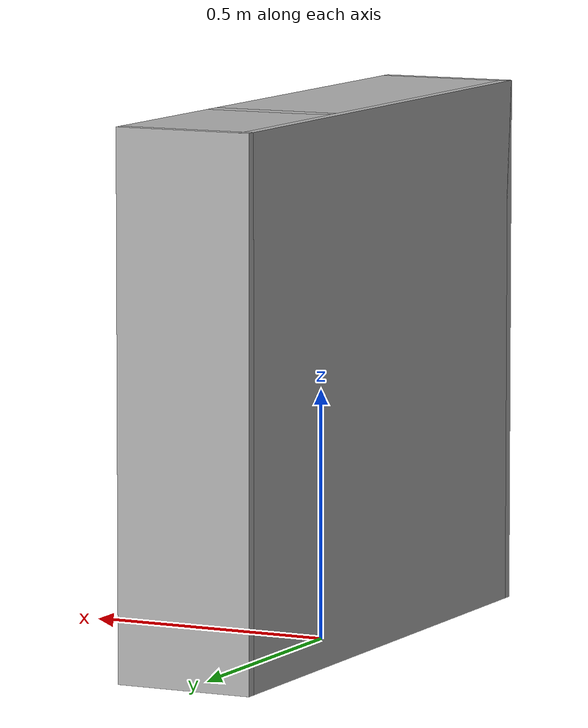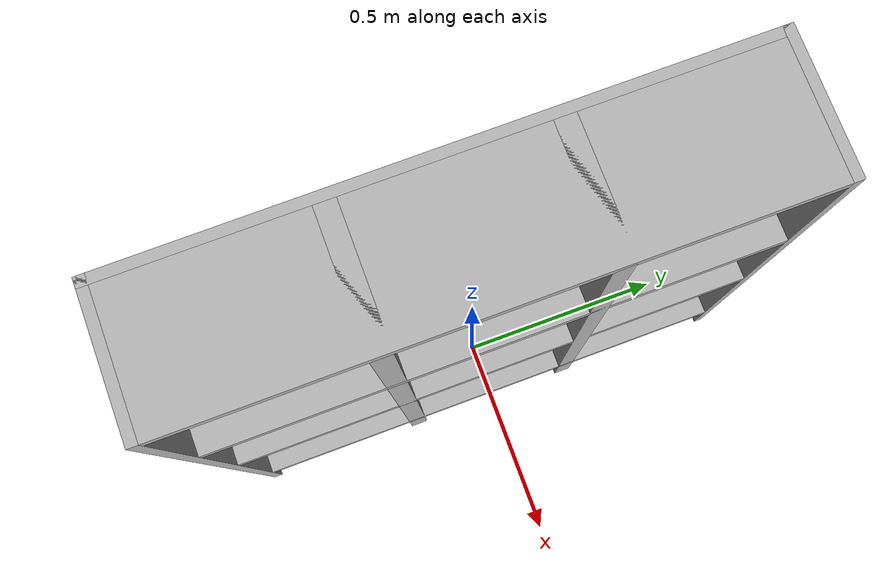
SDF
<?xml version="1.0" ?>
<sdf version="1.6">
  <model name="rwc2022/shelves120x28x107">
    <static>true</static>
    <link name="1_link">
      <collision name="1_col">
        <geometry>
          <box>
            <size>0.28 0.02 1.07</size>
          </box>
        </geometry>
      </collision>
      <visual name="1_vis">
        <geometry>
          <box>
            <size>0.28 0.02 1.07</size>
          </box>
        </geometry>
      </visual>
      <pose>0.0 -0.59 0.535 0 0 0</pose>
    </link>
    <link name="2_link">
      <collision name="2_col">
        <geometry>
          <box>
            <size>0.28 0.02 1.07</size>
          </box>
        </geometry>
      </collision>
      <visual name="2_vis">
        <geometry>
          <box>
            <size>0.28 0.02 1.07</size>
          </box>
        </geometry>
      </visual>
      <pose>0.0 0.59 0.535 0 0 0</pose>
    </link>
    <link name="3_link">
      <collision name="3_col">
        <geometry>
          <box>
            <size>0.02 1.2 1.07</size>
          </box>
        </geometry>
      </collision>
      <visual name="3_vis">
        <geometry>
          <box>
            <size>0.02 1.2 1.07</size>
          </box>
        </geometry>
      </visual>
      <pose>-0.13 0.0 0.535 0 0 0</pose>
    </link>
    <link name="4_link">
      <collision name="4_col">
        <geometry>
          <box>
            <size>0.26 1.16 0.02</size>
          </box>
        </geometry>
      </collision>
      <visual name="4_vis">
        <geometry>
          <box>
            <size>0.26 1.16 0.02</size>
          </box>
        </geometry>
      </visual>
      <pose>0.01 0.0 1.06 0 0 0</pose>
    </link>
    <link name="5_link">
      <collision name="5_col">
        <geometry>
          <box>
            <size>0.26 1.16 0.02</size>
          </box>
        </geometry>
      </collision>
      <visual name="5_vis">
        <geometry>
          <box>
            <size>0.26 1.16 0.02</size>
          </box>
        </geometry>
      </visual>
      <pose>0.01 0.0 0.75 0 0 0</pose>
    </link>
    <link name="6_link">
      <collision name="6_col">
        <geometry>
          <box>
            <size>0.26 1.16 0.02</size>
          </box>
        </geometry>
      </collision>
      <visual name="6_vis">
        <geometry>
          <box>
            <size>0.26 1.16 0.02</size>
          </box>
        </geometry>
      </visual>
      <pose>0.01 0.0 0.46 0 0 0</pose>
    </link>
    <link name="7_link">
      <collision name="7_col">
        <geometry>
          <box>
            <size>0.26 1.16 0.02</size>
          </box>
        </geometry>
      </collision>
      <visual name="7_vis">
        <geometry>
          <box>
            <size>0.26 1.16 0.02</size>
          </box>
        </geometry>
      </visual>
      <pose>0.01 0.0 0.11 0 0 0</pose>
    </link>
    <link name="8_link">
      <collision name="8_col">
        <geometry>
          <box>
            <size>0.26 0.04 1.07</size>
          </box>
        </geometry>
      </collision>
      <visual name="8_vis">
        <geometry>
          <box>
            <size>0.26 0.04 1.07</size>
          </box>
        </geometry>
      </visual>
      <pose>0.01 -0.2 0.535 0 0 0</pose>
    </link>
    <link name="9_link">
      <collision name="9_col">
        <geometry>
          <box>
            <size>0.26 0.04 1.07</size>
          </box>
        </geometry>
      </collision>
      <visual name="9_vis">
        <geometry>
          <box>
            <size>0.26 0.04 1.07</size>
          </box>
        </geometry>
      </visual>
      <pose>0.01 0.2 0.535 0 0 0</pose>
    </link>
    <link name="10_link">
      <collision name="10_col">
        <geometry>
          <box>
            <size>0.02 1.16 0.1</size>
          </box>
        </geometry>
      </collision>
      <visual name="10_vis">
        <geometry>
          <box>
            <size>0.02 1.16 0.1</size>
          </box>
        </geometry>
      </visual>
      <pose>0.10 0.0 0.05 0 0 0</pose>
    </link>
    <link name="in_front_of">
      <virtual_volume name="in_front_of_vv">
        <geometry>
          <box>
            <size>0.2 0.5 0.01</size>
          </box>
        </geometry>
        <pose>0.64 0.0 0.005 0 0 0</pose>
      </virtual_volume>
    </link>
  </model>
</sdf>
